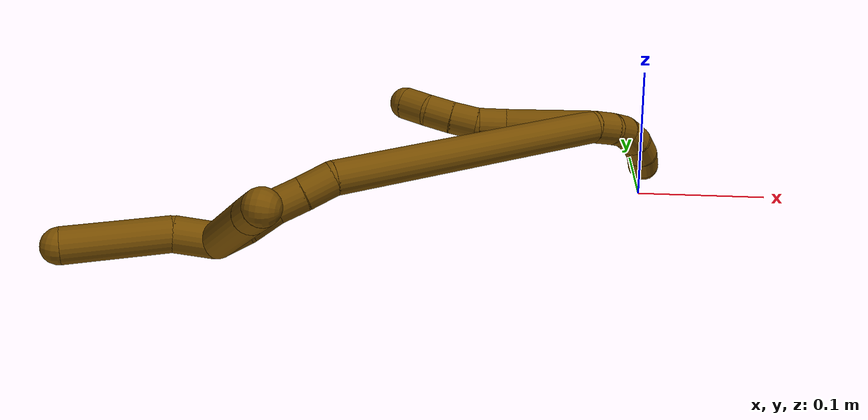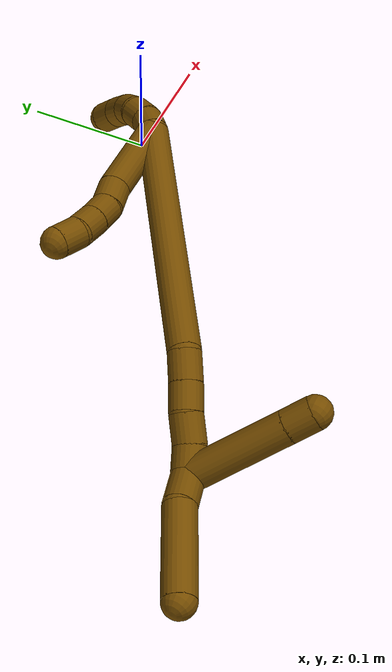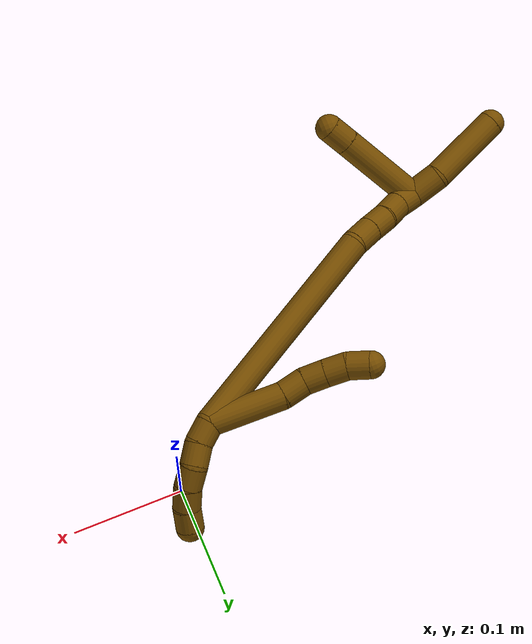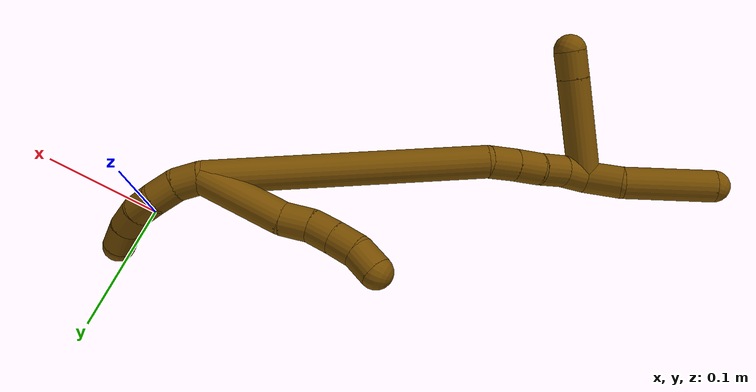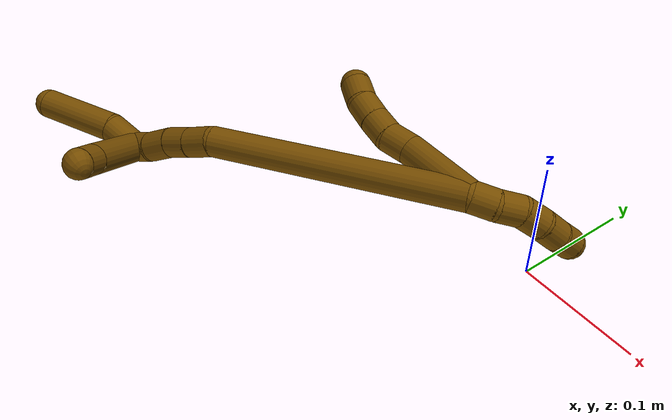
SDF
<sdf version="1.7">
 <world name="default">
  <model name="12">
   <static>0</static>
   <link name="12">
    <collision name="collision-cylinder-e_1_2_8">
     <pose>-0.004092 0.001171 0.033376 -0.035068 -0.121916 0.002141</pose>
     <geometry><cylinder><radius>0.0125</radius><length>0.067293</length></cylinder></geometry>
     <surface>
      <friction><ode><mu>1.16</mu><mu2>1.16</mu2><slip1>0</slip1><slip2>0</slip2></ode></friction>
      <contact><ode><kp>1e+06</kp><kd>1</kd><max_vel>0</max_vel><min_depth>0.001</min_depth></ode></contact>
     </surface>
    </collision>
    <visual name="visual-cylinder-e_1_2_8">
     <pose>-0.004092 0.001171 0.033376 -0.035068 -0.121916 0.002141</pose>
     <geometry><cylinder><radius>0.0125</radius><length>0.067293</length></cylinder></geometry>
     <material><ambient>0.466667 0.301961 0 1</ambient></material>
    </visual>
    <collision name="collision-cylinder-e_2_8_9">
     <pose>-0.009656 0.000169 0.077555 0.198517 -0.132783 -0.013243</pose>
     <geometry><cylinder><radius>0.0125</radius><length>0.022233</length></cylinder></geometry>
     <surface>
      <friction><ode><mu>1.16</mu><mu2>1.16</mu2><slip1>0</slip1><slip2>0</slip2></ode></friction>
      <contact><ode><kp>1e+06</kp><kd>1</kd><max_vel>0</max_vel><min_depth>0.001</min_depth></ode></contact>
     </surface>
    </collision>
    <visual name="visual-cylinder-e_2_8_9">
     <pose>-0.009656 0.000169 0.077555 0.198517 -0.132783 -0.013243</pose>
     <geometry><cylinder><radius>0.0125</radius><length>0.022233</length></cylinder></geometry>
     <material><ambient>0.466667 0.301961 0 1</ambient></material>
    </visual>
    <collision name="collision-cylinder-e_3_9_10">
     <pose>-0.010186 -0.001971 0.098376 -0.003295 0.09366 -0.000154</pose>
     <geometry><cylinder><radius>0.0125</radius><length>0.020127</length></cylinder></geometry>
     <surface>
      <friction><ode><mu>1.16</mu><mu2>1.16</mu2><slip1>0</slip1><slip2>0</slip2></ode></friction>
      <contact><ode><kp>1e+06</kp><kd>1</kd><max_vel>0</max_vel><min_depth>0.001</min_depth></ode></contact>
     </surface>
    </collision>
    <visual name="visual-cylinder-e_3_9_10">
     <pose>-0.010186 -0.001971 0.098376 -0.003295 0.09366 -0.000154</pose>
     <geometry><cylinder><radius>0.0125</radius><length>0.020127</length></cylinder></geometry>
     <material><ambient>0.466667 0.301961 0 1</ambient></material>
    </visual>
    <collision name="collision-cylinder-e_4_10_11">
     <pose>-0.007724 -0.001582 0.118324 -0.035911 0.151927 -0.002733</pose>
     <geometry><cylinder><radius>0.0125</radius><length>0.0201</length></cylinder></geometry>
     <surface>
      <friction><ode><mu>1.16</mu><mu2>1.16</mu2><slip1>0</slip1><slip2>0</slip2></ode></friction>
      <contact><ode><kp>1e+06</kp><kd>1</kd><max_vel>0</max_vel><min_depth>0.001</min_depth></ode></contact>
     </surface>
    </collision>
    <visual name="visual-cylinder-e_4_10_11">
     <pose>-0.007724 -0.001582 0.118324 -0.035911 0.151927 -0.002733</pose>
     <geometry><cylinder><radius>0.0125</radius><length>0.0201</length></cylinder></geometry>
     <material><ambient>0.466667 0.301961 0 1</ambient></material>
    </visual>
    <collision name="collision-cylinder-e_5_11_6">
     <pose>-0.004149 0.001829 0.137682 -0.313201 0.204337 -0.032373</pose>
     <geometry><cylinder><radius>0.0125</radius><length>0.020246</length></cylinder></geometry>
     <surface>
      <friction><ode><mu>1.16</mu><mu2>1.16</mu2><slip1>0</slip1><slip2>0</slip2></ode></friction>
      <contact><ode><kp>1e+06</kp><kd>1</kd><max_vel>0</max_vel><min_depth>0.001</min_depth></ode></contact>
     </surface>
    </collision>
    <visual name="visual-cylinder-e_5_11_6">
     <pose>-0.004149 0.001829 0.137682 -0.313201 0.204337 -0.032373</pose>
     <geometry><cylinder><radius>0.0125</radius><length>0.020246</length></cylinder></geometry>
     <material><ambient>0.466667 0.301961 0 1</ambient></material>
    </visual>
    <collision name="collision-cylinder-e_1_2_12">
     <pose>0.00136 0.006356 -0.007599 -2.44507 0.136469 -0.372115</pose>
     <geometry><cylinder><radius>0.0125</radius><length>0.02</length></cylinder></geometry>
     <surface>
      <friction><ode><mu>1.16</mu><mu2>1.16</mu2><slip1>0</slip1><slip2>0</slip2></ode></friction>
      <contact><ode><kp>1e+06</kp><kd>1</kd><max_vel>0</max_vel><min_depth>0.001</min_depth></ode></contact>
     </surface>
    </collision>
    <visual name="visual-cylinder-e_1_2_12">
     <pose>0.00136 0.006356 -0.007599 -2.44507 0.136469 -0.372115</pose>
     <geometry><cylinder><radius>0.0125</radius><length>0.02</length></cylinder></geometry>
     <material><ambient>0.466667 0.301961 0 1</ambient></material>
    </visual>
    <collision name="collision-cylinder-e_2_12_13">
     <pose>0.003774 0.020945 -0.020776 -2.16615 0.105458 -0.198335</pose>
     <geometry><cylinder><radius>0.0125</radius><length>0.02</length></cylinder></geometry>
     <surface>
      <friction><ode><mu>1.16</mu><mu2>1.16</mu2><slip1>0</slip1><slip2>0</slip2></ode></friction>
      <contact><ode><kp>1e+06</kp><kd>1</kd><max_vel>0</max_vel><min_depth>0.001</min_depth></ode></contact>
     </surface>
    </collision>
    <visual name="visual-cylinder-e_2_12_13">
     <pose>0.003774 0.020945 -0.020776 -2.16615 0.105458 -0.198335</pose>
     <geometry><cylinder><radius>0.0125</radius><length>0.02</length></cylinder></geometry>
     <material><ambient>0.466667 0.301961 0 1</ambient></material>
    </visual>
    <collision name="collision-cylinder-e_3_13_14">
     <pose>0.002734 0.037053 -0.032151 -2.20557 -0.210759 0.412558</pose>
     <geometry><cylinder><radius>0.0125</radius><length>0.02</length></cylinder></geometry>
     <surface>
      <friction><ode><mu>1.16</mu><mu2>1.16</mu2><slip1>0</slip1><slip2>0</slip2></ode></friction>
      <contact><ode><kp>1e+06</kp><kd>1</kd><max_vel>0</max_vel><min_depth>0.001</min_depth></ode></contact>
     </surface>
    </collision>
    <visual name="visual-cylinder-e_3_13_14">
     <pose>0.002734 0.037053 -0.032151 -2.20557 -0.210759 0.412558</pose>
     <geometry><cylinder><radius>0.0125</radius><length>0.02</length></cylinder></geometry>
     <material><ambient>0.466667 0.301961 0 1</ambient></material>
    </visual>
    <collision name="collision-cylinder-e_4_14_15">
     <pose>-0.002679 0.053515 -0.04185 -1.99707 -0.338501 0.518623</pose>
     <geometry><cylinder><radius>0.0125</radius><length>0.02</length></cylinder></geometry>
     <surface>
      <friction><ode><mu>1.16</mu><mu2>1.16</mu2><slip1>0</slip1><slip2>0</slip2></ode></friction>
      <contact><ode><kp>1e+06</kp><kd>1</kd><max_vel>0</max_vel><min_depth>0.001</min_depth></ode></contact>
     </surface>
    </collision>
    <visual name="visual-cylinder-e_4_14_15">
     <pose>-0.002679 0.053515 -0.04185 -1.99707 -0.338501 0.518623</pose>
     <geometry><cylinder><radius>0.0125</radius><length>0.02</length></cylinder></geometry>
     <material><ambient>0.466667 0.301961 0 1</ambient></material>
    </visual>
    <collision name="collision-cylinder-e_5_15_5">
     <pose>-0.00947 0.071264 -0.04776 -1.78669 -0.354397 0.43807</pose>
     <geometry><cylinder><radius>0.0125</radius><length>0.02</length></cylinder></geometry>
     <surface>
      <friction><ode><mu>1.16</mu><mu2>1.16</mu2><slip1>0</slip1><slip2>0</slip2></ode></friction>
      <contact><ode><kp>1e+06</kp><kd>1</kd><max_vel>0</max_vel><min_depth>0.001</min_depth></ode></contact>
     </surface>
    </collision>
    <visual name="visual-cylinder-e_5_15_5">
     <pose>-0.00947 0.071264 -0.04776 -1.78669 -0.354397 0.43807</pose>
     <geometry><cylinder><radius>0.0125</radius><length>0.02</length></cylinder></geometry>
     <material><ambient>0.466667 0.301961 0 1</ambient></material>
    </visual>
    <collision name="collision-cylinder-e_1_2_16">
     <pose>-0.038367 -0.046097 0.087161 0.486475 -0.371088 -0.09309</pose>
     <geometry><cylinder><radius>0.0125</radius><length>0.211602</length></cylinder></geometry>
     <surface>
      <friction><ode><mu>1.16</mu><mu2>1.16</mu2><slip1>0</slip1><slip2>0</slip2></ode></friction>
      <contact><ode><kp>1e+06</kp><kd>1</kd><max_vel>0</max_vel><min_depth>0.001</min_depth></ode></contact>
     </surface>
    </collision>
    <visual name="visual-cylinder-e_1_2_16">
     <pose>-0.038367 -0.046097 0.087161 0.486475 -0.371088 -0.09309</pose>
     <geometry><cylinder><radius>0.0125</radius><length>0.211602</length></cylinder></geometry>
     <material><ambient>0.466667 0.301961 0 1</ambient></material>
    </visual>
    <collision name="collision-cylinder-e_2_16_17">
     <pose>-0.083755 -0.094916 0.183126 0.299942 -0.651094 -0.101925</pose>
     <geometry><cylinder><radius>0.0125</radius><length>0.023173</length></cylinder></geometry>
     <surface>
      <friction><ode><mu>1.16</mu><mu2>1.16</mu2><slip1>0</slip1><slip2>0</slip2></ode></friction>
      <contact><ode><kp>1e+06</kp><kd>1</kd><max_vel>0</max_vel><min_depth>0.001</min_depth></ode></contact>
     </surface>
    </collision>
    <visual name="visual-cylinder-e_2_16_17">
     <pose>-0.083755 -0.094916 0.183126 0.299942 -0.651094 -0.101925</pose>
     <geometry><cylinder><radius>0.0125</radius><length>0.023173</length></cylinder></geometry>
     <material><ambient>0.466667 0.301961 0 1</ambient></material>
    </visual>
    <collision name="collision-cylinder-e_3_17_18">
     <pose>-0.096981 -0.099843 0.20047 0.252562 -0.613029 -0.080317</pose>
     <geometry><cylinder><radius>0.0125</radius><length>0.021564</length></cylinder></geometry>
     <surface>
      <friction><ode><mu>1.16</mu><mu2>1.16</mu2><slip1>0</slip1><slip2>0</slip2></ode></friction>
      <contact><ode><kp>1e+06</kp><kd>1</kd><max_vel>0</max_vel><min_depth>0.001</min_depth></ode></contact>
     </surface>
    </collision>
    <visual name="visual-cylinder-e_3_17_18">
     <pose>-0.096981 -0.099843 0.20047 0.252562 -0.613029 -0.080317</pose>
     <geometry><cylinder><radius>0.0125</radius><length>0.021564</length></cylinder></geometry>
     <material><ambient>0.466667 0.301961 0 1</ambient></material>
    </visual>
    <collision name="collision-cylinder-e_4_18_19">
     <pose>-0.111098 -0.104712 0.216661 0.33522 -0.773544 -0.137606</pose>
     <geometry><cylinder><radius>0.0125</radius><length>0.022653</length></cylinder></geometry>
     <surface>
      <friction><ode><mu>1.16</mu><mu2>1.16</mu2><slip1>0</slip1><slip2>0</slip2></ode></friction>
      <contact><ode><kp>1e+06</kp><kd>1</kd><max_vel>0</max_vel><min_depth>0.001</min_depth></ode></contact>
     </surface>
    </collision>
    <visual name="visual-cylinder-e_4_18_19">
     <pose>-0.111098 -0.104712 0.216661 0.33522 -0.773544 -0.137606</pose>
     <geometry><cylinder><radius>0.0125</radius><length>0.022653</length></cylinder></geometry>
     <material><ambient>0.466667 0.301961 0 1</ambient></material>
    </visual>
    <collision name="collision-cylinder-e_5_19_1">
     <pose>-0.125237 -0.108706 0.232669 0.157641 -0.634417 -0.051848</pose>
     <geometry><cylinder><radius>0.0125</radius><length>0.021007</length></cylinder></geometry>
     <surface>
      <friction><ode><mu>1.16</mu><mu2>1.16</mu2><slip1>0</slip1><slip2>0</slip2></ode></friction>
      <contact><ode><kp>1e+06</kp><kd>1</kd><max_vel>0</max_vel><min_depth>0.001</min_depth></ode></contact>
     </surface>
    </collision>
    <visual name="visual-cylinder-e_5_19_1">
     <pose>-0.125237 -0.108706 0.232669 0.157641 -0.634417 -0.051848</pose>
     <geometry><cylinder><radius>0.0125</radius><length>0.021007</length></cylinder></geometry>
     <material><ambient>0.466667 0.301961 0 1</ambient></material>
    </visual>
    <collision name="collision-cylinder-e_1_1_20">
     <pose>-0.122094 -0.143111 0.221926 2.09443 0.240557 0.412732</pose>
     <geometry><cylinder><radius>0.0125</radius><length>0.078652</length></cylinder></geometry>
     <surface>
      <friction><ode><mu>1.16</mu><mu2>1.16</mu2><slip1>0</slip1><slip2>0</slip2></ode></friction>
      <contact><ode><kp>1e+06</kp><kd>1</kd><max_vel>0</max_vel><min_depth>0.001</min_depth></ode></contact>
     </surface>
    </collision>
    <visual name="visual-cylinder-e_1_1_20">
     <pose>-0.122094 -0.143111 0.221926 2.09443 0.240557 0.412732</pose>
     <geometry><cylinder><radius>0.0125</radius><length>0.078652</length></cylinder></geometry>
     <material><ambient>0.466667 0.301961 0 1</ambient></material>
    </visual>
    <collision name="collision-cylinder-e_2_20_4">
     <pose>-0.110245 -0.185131 0.197556 2.10342 0.234444 0.406529</pose>
     <geometry><cylinder><radius>0.0125</radius><length>0.021348</length></cylinder></geometry>
     <surface>
      <friction><ode><mu>1.16</mu><mu2>1.16</mu2><slip1>0</slip1><slip2>0</slip2></ode></friction>
      <contact><ode><kp>1e+06</kp><kd>1</kd><max_vel>0</max_vel><min_depth>0.001</min_depth></ode></contact>
     </surface>
    </collision>
    <visual name="visual-cylinder-e_2_20_4">
     <pose>-0.110245 -0.185131 0.197556 2.10342 0.234444 0.406529</pose>
     <geometry><cylinder><radius>0.0125</radius><length>0.021348</length></cylinder></geometry>
     <material><ambient>0.466667 0.301961 0 1</ambient></material>
    </visual>
    <collision name="collision-cylinder-e_1_1_21">
     <pose>-0.131579 -0.113921 0.255162 0.268246 -0.007919 -0.001068</pose>
     <geometry><cylinder><radius>0.0125</radius><length>0.029328</length></cylinder></geometry>
     <surface>
      <friction><ode><mu>1.16</mu><mu2>1.16</mu2><slip1>0</slip1><slip2>0</slip2></ode></friction>
      <contact><ode><kp>1e+06</kp><kd>1</kd><max_vel>0</max_vel><min_depth>0.001</min_depth></ode></contact>
     </surface>
    </collision>
    <visual name="visual-cylinder-e_1_1_21">
     <pose>-0.131579 -0.113921 0.255162 0.268246 -0.007919 -0.001068</pose>
     <geometry><cylinder><radius>0.0125</radius><length>0.029328</length></cylinder></geometry>
     <material><ambient>0.466667 0.301961 0 1</ambient></material>
    </visual>
    <collision name="collision-cylinder-e_2_21_3">
     <pose>-0.141122 -0.130631 0.30085 0.386083 -0.270062 -0.053101</pose>
     <geometry><cylinder><radius>0.0125</radius><length>0.070672</length></cylinder></geometry>
     <surface>
      <friction><ode><mu>1.16</mu><mu2>1.16</mu2><slip1>0</slip1><slip2>0</slip2></ode></friction>
      <contact><ode><kp>1e+06</kp><kd>1</kd><max_vel>0</max_vel><min_depth>0.001</min_depth></ode></contact>
     </surface>
    </collision>
    <visual name="visual-cylinder-e_2_21_3">
     <pose>-0.141122 -0.130631 0.30085 0.386083 -0.270062 -0.053101</pose>
     <geometry><cylinder><radius>0.0125</radius><length>0.070672</length></cylinder></geometry>
     <material><ambient>0.466667 0.301961 0 1</ambient></material>
    </visual>
    <collision name="collision-sphere-3">
     <pose>-0.15055 -0.143455 0.332399 0 -0 0</pose>
     <geometry><sphere><radius>0.0125</radius></sphere></geometry>
     <surface>
      <friction><ode><mu>1.16</mu><mu2>1.16</mu2><slip1>0</slip1><slip2>0</slip2></ode></friction>
      <contact><ode><kp>1e+06</kp><kd>1</kd><max_vel>0</max_vel><min_depth>0.001</min_depth></ode></contact>
     </surface>
    </collision>
    <visual name="visual-sphere-3">
     <pose>-0.15055 -0.143455 0.332399 0 -0 0</pose>
     <geometry><sphere><radius>0.0125</radius></sphere></geometry>
     <material><ambient>0.466667 0.301961 0 1</ambient></material>
    </visual>
    <collision name="collision-sphere-21">
     <pose>-0.131695 -0.117807 0.269301 0 -0 0</pose>
     <geometry><sphere><radius>0.0125</radius></sphere></geometry>
     <surface>
      <friction><ode><mu>1.16</mu><mu2>1.16</mu2><slip1>0</slip1><slip2>0</slip2></ode></friction>
      <contact><ode><kp>1e+06</kp><kd>1</kd><max_vel>0</max_vel><min_depth>0.001</min_depth></ode></contact>
     </surface>
    </collision>
    <visual name="visual-sphere-21">
     <pose>-0.131695 -0.117807 0.269301 0 -0 0</pose>
     <geometry><sphere><radius>0.0125</radius></sphere></geometry>
     <material><ambient>0.466667 0.301961 0 1</ambient></material>
    </visual>
    <collision name="collision-sphere-4">
     <pose>-0.107765 -0.194074 0.192284 0 -0 0</pose>
     <geometry><sphere><radius>0.0125</radius></sphere></geometry>
     <surface>
      <friction><ode><mu>1.16</mu><mu2>1.16</mu2><slip1>0</slip1><slip2>0</slip2></ode></friction>
      <contact><ode><kp>1e+06</kp><kd>1</kd><max_vel>0</max_vel><min_depth>0.001</min_depth></ode></contact>
     </surface>
    </collision>
    <visual name="visual-sphere-4">
     <pose>-0.107765 -0.194074 0.192284 0 -0 0</pose>
     <geometry><sphere><radius>0.0125</radius></sphere></geometry>
     <material><ambient>0.466667 0.301961 0 1</ambient></material>
    </visual>
    <collision name="collision-sphere-20">
     <pose>-0.112724 -0.176187 0.202828 0 -0 0</pose>
     <geometry><sphere><radius>0.0125</radius></sphere></geometry>
     <surface>
      <friction><ode><mu>1.16</mu><mu2>1.16</mu2><slip1>0</slip1><slip2>0</slip2></ode></friction>
      <contact><ode><kp>1e+06</kp><kd>1</kd><max_vel>0</max_vel><min_depth>0.001</min_depth></ode></contact>
     </surface>
    </collision>
    <visual name="visual-sphere-20">
     <pose>-0.112724 -0.176187 0.202828 0 -0 0</pose>
     <geometry><sphere><radius>0.0125</radius></sphere></geometry>
     <material><ambient>0.466667 0.301961 0 1</ambient></material>
    </visual>
    <collision name="collision-sphere-6">
     <pose>-0.002094 0.004883 0.147113 0 -0 0</pose>
     <geometry><sphere><radius>0.0125</radius></sphere></geometry>
     <surface>
      <friction><ode><mu>1.16</mu><mu2>1.16</mu2><slip1>0</slip1><slip2>0</slip2></ode></friction>
      <contact><ode><kp>1e+06</kp><kd>1</kd><max_vel>0</max_vel><min_depth>0.001</min_depth></ode></contact>
     </surface>
    </collision>
    <visual name="visual-sphere-6">
     <pose>-0.002094 0.004883 0.147113 0 -0 0</pose>
     <geometry><sphere><radius>0.0125</radius></sphere></geometry>
     <material><ambient>0.466667 0.301961 0 1</ambient></material>
    </visual>
    <collision name="collision-sphere-11">
     <pose>-0.006203 -0.001225 0.128252 0 -0 0</pose>
     <geometry><sphere><radius>0.0125</radius></sphere></geometry>
     <surface>
      <friction><ode><mu>1.16</mu><mu2>1.16</mu2><slip1>0</slip1><slip2>0</slip2></ode></friction>
      <contact><ode><kp>1e+06</kp><kd>1</kd><max_vel>0</max_vel><min_depth>0.001</min_depth></ode></contact>
     </surface>
    </collision>
    <visual name="visual-sphere-11">
     <pose>-0.006203 -0.001225 0.128252 0 -0 0</pose>
     <geometry><sphere><radius>0.0125</radius></sphere></geometry>
     <material><ambient>0.466667 0.301961 0 1</ambient></material>
    </visual>
    <collision name="collision-sphere-10">
     <pose>-0.009245 -0.001938 0.108396 0 -0 0</pose>
     <geometry><sphere><radius>0.0125</radius></sphere></geometry>
     <surface>
      <friction><ode><mu>1.16</mu><mu2>1.16</mu2><slip1>0</slip1><slip2>0</slip2></ode></friction>
      <contact><ode><kp>1e+06</kp><kd>1</kd><max_vel>0</max_vel><min_depth>0.001</min_depth></ode></contact>
     </surface>
    </collision>
    <visual name="visual-sphere-10">
     <pose>-0.009245 -0.001938 0.108396 0 -0 0</pose>
     <geometry><sphere><radius>0.0125</radius></sphere></geometry>
     <material><ambient>0.466667 0.301961 0 1</ambient></material>
    </visual>
    <collision name="collision-sphere-9">
     <pose>-0.011127 -0.002004 0.088357 0 -0 0</pose>
     <geometry><sphere><radius>0.0125</radius></sphere></geometry>
     <surface>
      <friction><ode><mu>1.16</mu><mu2>1.16</mu2><slip1>0</slip1><slip2>0</slip2></ode></friction>
      <contact><ode><kp>1e+06</kp><kd>1</kd><max_vel>0</max_vel><min_depth>0.001</min_depth></ode></contact>
     </surface>
    </collision>
    <visual name="visual-sphere-9">
     <pose>-0.011127 -0.002004 0.088357 0 -0 0</pose>
     <geometry><sphere><radius>0.0125</radius></sphere></geometry>
     <material><ambient>0.466667 0.301961 0 1</ambient></material>
    </visual>
    <collision name="collision-sphere-2">
     <geometry><sphere><radius>0.0125</radius></sphere></geometry>
     <surface>
      <friction><ode><mu>1.16</mu><mu2>1.16</mu2><slip1>0</slip1><slip2>0</slip2></ode></friction>
      <contact><ode><kp>1e+06</kp><kd>1</kd><max_vel>0</max_vel><min_depth>0.001</min_depth></ode></contact>
     </surface>
    </collision>
    <visual name="visual-sphere-2">
     <geometry><sphere><radius>0.0125</radius></sphere></geometry>
     <material><ambient>0.466667 0.301961 0 1</ambient></material>
    </visual>
    <collision name="collision-sphere-19">
     <pose>-0.119012 -0.107378 0.224314 0 -0 0</pose>
     <geometry><sphere><radius>0.0125</radius></sphere></geometry>
     <surface>
      <friction><ode><mu>1.16</mu><mu2>1.16</mu2><slip1>0</slip1><slip2>0</slip2></ode></friction>
      <contact><ode><kp>1e+06</kp><kd>1</kd><max_vel>0</max_vel><min_depth>0.001</min_depth></ode></contact>
     </surface>
    </collision>
    <visual name="visual-sphere-19">
     <pose>-0.119012 -0.107378 0.224314 0 -0 0</pose>
     <geometry><sphere><radius>0.0125</radius></sphere></geometry>
     <material><ambient>0.466667 0.301961 0 1</ambient></material>
    </visual>
    <collision name="collision-sphere-8">
     <pose>-0.008184 0.002342 0.066752 0 -0 0</pose>
     <geometry><sphere><radius>0.0125</radius></sphere></geometry>
     <surface>
      <friction><ode><mu>1.16</mu><mu2>1.16</mu2><slip1>0</slip1><slip2>0</slip2></ode></friction>
      <contact><ode><kp>1e+06</kp><kd>1</kd><max_vel>0</max_vel><min_depth>0.001</min_depth></ode></contact>
     </surface>
    </collision>
    <visual name="visual-sphere-8">
     <pose>-0.008184 0.002342 0.066752 0 -0 0</pose>
     <geometry><sphere><radius>0.0125</radius></sphere></geometry>
     <material><ambient>0.466667 0.301961 0 1</ambient></material>
    </visual>
    <collision name="collision-sphere-12">
     <pose>0.002721 0.012712 -0.015199 0 -0 0</pose>
     <geometry><sphere><radius>0.0125</radius></sphere></geometry>
     <surface>
      <friction><ode><mu>1.16</mu><mu2>1.16</mu2><slip1>0</slip1><slip2>0</slip2></ode></friction>
      <contact><ode><kp>1e+06</kp><kd>1</kd><max_vel>0</max_vel><min_depth>0.001</min_depth></ode></contact>
     </surface>
    </collision>
    <visual name="visual-sphere-12">
     <pose>0.002721 0.012712 -0.015199 0 -0 0</pose>
     <geometry><sphere><radius>0.0125</radius></sphere></geometry>
     <material><ambient>0.466667 0.301961 0 1</ambient></material>
    </visual>
    <collision name="collision-sphere-13">
     <pose>0.004826 0.029179 -0.026353 0 -0 0</pose>
     <geometry><sphere><radius>0.0125</radius></sphere></geometry>
     <surface>
      <friction><ode><mu>1.16</mu><mu2>1.16</mu2><slip1>0</slip1><slip2>0</slip2></ode></friction>
      <contact><ode><kp>1e+06</kp><kd>1</kd><max_vel>0</max_vel><min_depth>0.001</min_depth></ode></contact>
     </surface>
    </collision>
    <visual name="visual-sphere-13">
     <pose>0.004826 0.029179 -0.026353 0 -0 0</pose>
     <geometry><sphere><radius>0.0125</radius></sphere></geometry>
     <material><ambient>0.466667 0.301961 0 1</ambient></material>
    </visual>
    <collision name="collision-sphere-14">
     <pose>0.000642 0.044927 -0.03795 0 -0 0</pose>
     <geometry><sphere><radius>0.0125</radius></sphere></geometry>
     <surface>
      <friction><ode><mu>1.16</mu><mu2>1.16</mu2><slip1>0</slip1><slip2>0</slip2></ode></friction>
      <contact><ode><kp>1e+06</kp><kd>1</kd><max_vel>0</max_vel><min_depth>0.001</min_depth></ode></contact>
     </surface>
    </collision>
    <visual name="visual-sphere-14">
     <pose>0.000642 0.044927 -0.03795 0 -0 0</pose>
     <geometry><sphere><radius>0.0125</radius></sphere></geometry>
     <material><ambient>0.466667 0.301961 0 1</ambient></material>
    </visual>
    <collision name="collision-sphere-15">
     <pose>-0.005999 0.062103 -0.045751 0 -0 0</pose>
     <geometry><sphere><radius>0.0125</radius></sphere></geometry>
     <surface>
      <friction><ode><mu>1.16</mu><mu2>1.16</mu2><slip1>0</slip1><slip2>0</slip2></ode></friction>
      <contact><ode><kp>1e+06</kp><kd>1</kd><max_vel>0</max_vel><min_depth>0.001</min_depth></ode></contact>
     </surface>
    </collision>
    <visual name="visual-sphere-15">
     <pose>-0.005999 0.062103 -0.045751 0 -0 0</pose>
     <geometry><sphere><radius>0.0125</radius></sphere></geometry>
     <material><ambient>0.466667 0.301961 0 1</ambient></material>
    </visual>
    <collision name="collision-sphere-5">
     <pose>-0.01294 0.080425 -0.049769 0 -0 0</pose>
     <geometry><sphere><radius>0.0125</radius></sphere></geometry>
     <surface>
      <friction><ode><mu>1.16</mu><mu2>1.16</mu2><slip1>0</slip1><slip2>0</slip2></ode></friction>
      <contact><ode><kp>1e+06</kp><kd>1</kd><max_vel>0</max_vel><min_depth>0.001</min_depth></ode></contact>
     </surface>
    </collision>
    <visual name="visual-sphere-5">
     <pose>-0.01294 0.080425 -0.049769 0 -0 0</pose>
     <geometry><sphere><radius>0.0125</radius></sphere></geometry>
     <material><ambient>0.466667 0.301961 0 1</ambient></material>
    </visual>
    <collision name="collision-sphere-16">
     <pose>-0.076733 -0.092193 0.174321 0 -0 0</pose>
     <geometry><sphere><radius>0.0125</radius></sphere></geometry>
     <surface>
      <friction><ode><mu>1.16</mu><mu2>1.16</mu2><slip1>0</slip1><slip2>0</slip2></ode></friction>
      <contact><ode><kp>1e+06</kp><kd>1</kd><max_vel>0</max_vel><min_depth>0.001</min_depth></ode></contact>
     </surface>
    </collision>
    <visual name="visual-sphere-16">
     <pose>-0.076733 -0.092193 0.174321 0 -0 0</pose>
     <geometry><sphere><radius>0.0125</radius></sphere></geometry>
     <material><ambient>0.466667 0.301961 0 1</ambient></material>
    </visual>
    <collision name="collision-sphere-17">
     <pose>-0.090777 -0.097639 0.19193 0 -0 0</pose>
     <geometry><sphere><radius>0.0125</radius></sphere></geometry>
     <surface>
      <friction><ode><mu>1.16</mu><mu2>1.16</mu2><slip1>0</slip1><slip2>0</slip2></ode></friction>
      <contact><ode><kp>1e+06</kp><kd>1</kd><max_vel>0</max_vel><min_depth>0.001</min_depth></ode></contact>
     </surface>
    </collision>
    <visual name="visual-sphere-17">
     <pose>-0.090777 -0.097639 0.19193 0 -0 0</pose>
     <geometry><sphere><radius>0.0125</radius></sphere></geometry>
     <material><ambient>0.466667 0.301961 0 1</ambient></material>
    </visual>
    <collision name="collision-sphere-18">
     <pose>-0.103184 -0.102047 0.209009 0 -0 0</pose>
     <geometry><sphere><radius>0.0125</radius></sphere></geometry>
     <surface>
      <friction><ode><mu>1.16</mu><mu2>1.16</mu2><slip1>0</slip1><slip2>0</slip2></ode></friction>
      <contact><ode><kp>1e+06</kp><kd>1</kd><max_vel>0</max_vel><min_depth>0.001</min_depth></ode></contact>
     </surface>
    </collision>
    <visual name="visual-sphere-18">
     <pose>-0.103184 -0.102047 0.209009 0 -0 0</pose>
     <geometry><sphere><radius>0.0125</radius></sphere></geometry>
     <material><ambient>0.466667 0.301961 0 1</ambient></material>
    </visual>
    <collision name="collision-sphere-1">
     <pose>-0.131463 -0.110035 0.241023 0 -0 0</pose>
     <geometry><sphere><radius>0.0125</radius></sphere></geometry>
     <surface>
      <friction><ode><mu>1.16</mu><mu2>1.16</mu2><slip1>0</slip1><slip2>0</slip2></ode></friction>
      <contact><ode><kp>1e+06</kp><kd>1</kd><max_vel>0</max_vel><min_depth>0.001</min_depth></ode></contact>
     </surface>
    </collision>
    <visual name="visual-sphere-1">
     <pose>-0.131463 -0.110035 0.241023 0 -0 0</pose>
     <geometry><sphere><radius>0.0125</radius></sphere></geometry>
     <material><ambient>0.466667 0.301961 0 1</ambient></material>
    </visual>
    <inertial>
     <pose>-0.058809 -0.05695 0.127116 0 -0 0</pose>
     <mass>0.75</mass>
     <inertia>
      <ixx>0.000797</ixx>
      <ixy>0</ixy>
      <ixz>0</ixz>
      <iyy>0.000705</iyy>
      <iyz>0</iyz>
      <izz>0.000718</izz>
     </inertia>
    </inertial>
   </link>
   <pose>-0.040405 -0.02936 0.062739 -1.28859 -1.13851 1.27911</pose>
  </model>
 </world>
</sdf>
